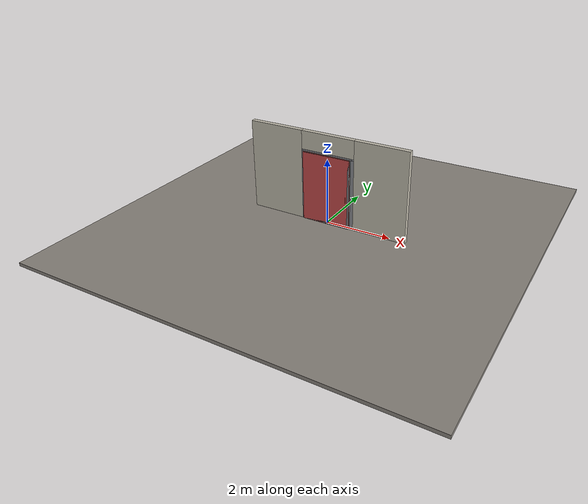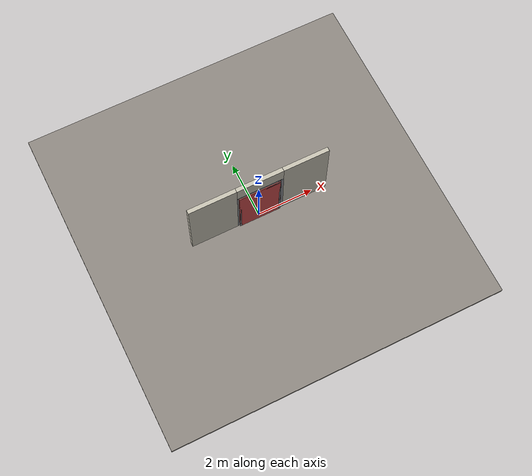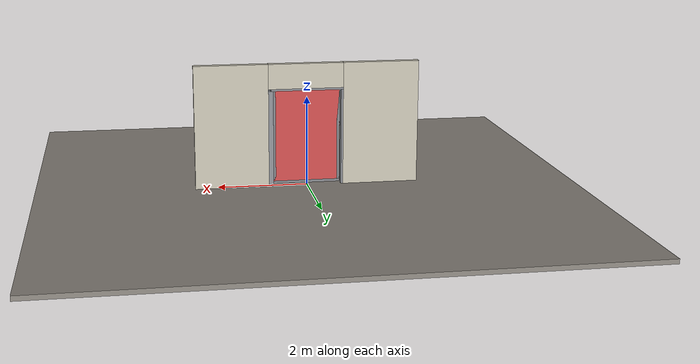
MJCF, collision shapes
<?xml version="1.0" ?>
<mujoco model="db0581_sliding_single_minimal">
  <compiler angle="radian" meshdir="../../hardware" texturedir="../../textures" autolimits="true" inertiafromgeom="false"/>
  <option timestep="0.002" integrator="implicitfast" cone="elliptic" impratio="10" noslip_iterations="3">
    <flag multiccd="enable"/>
  </option>
  <size memory="16M"/>
  <default>
    <geom condim="4" solref="0.005 1" solimp="0.95 0.99 0.001"/>
    <joint solreflimit="0.005 1" solimplimit="0.95 0.99 0.001"/>
    <tendon solreflimit="0.005 1"/>
    <equality solref="0.002 1"/>
  </default>
  <visual>
    <headlight ambient="0.4 0.4 0.4" diffuse="0.7 0.7 0.7" specular="0.2 0.2 0.2"/>
    <quality shadowsize="4096"/>
    <map znear="0.01" zfar="60"/>
  </visual>
  <asset>
    <mesh name="pull_1e5d69a91a" file="pull_1e5d69a91a.obj"/>
    <material name="mat_floor" rgba="0.55 0.53 0.5 1" specular="0.2" shininess="0.15" reflectance="0"/>
    <material name="mat_wall" rgba="0.78 0.76 0.7 1" specular="0.2" shininess="0.1" reflectance="0"/>
    <material name="mat_frame" rgba="0.55 0.56 0.58 1" specular="0.8" shininess="0.55" reflectance="0.4"/>
    <material name="mat_track" rgba="0.8 0.81 0.83 1" specular="0.8" shininess="0.6" reflectance="0.4"/>
    <material name="mat_leaf" rgba="0.5 0.51 0.53 1" specular="0.23" shininess="0.52" reflectance="0.02"/>
    <material name="mat_roller" rgba="0.65 0.66 0.68 1" specular="0.74" shininess="0.5" reflectance="0.36"/>
    <material name="mat_op_stainless" rgba="0.75 0.76 0.77 1" specular="0.8" shininess="0.65" reflectance="0.4"/>
    <material name="mat_hook" rgba="0.75 0.76 0.77 1" specular="0.8" shininess="0.65" reflectance="0.4"/>
    <texture name="skybox" type="skybox" builtin="gradient" rgb1="0.6 0.7 0.85" rgb2="0.9 0.92 0.95" width="256" height="256"/>
  </asset>
  <worldbody>
    <light name="sun" pos="1.5 -2.5 4" dir="-0.3 0.5 -0.8" directional="true" diffuse="0.8 0.8 0.8" specular="0.3 0.3 0.3" castshadow="true"/>
    <light name="fill" pos="-1.5 2.5 3" dir="0.3 -0.5 -0.7" directional="true" diffuse="0.35 0.35 0.4" castshadow="false"/>
    <camera name="robot_view" pos="0 -2.644375 1.817425" xyaxes="1 0 0 0 0.26963 0.962964" fovy="52"/>
    <camera name="far_view" pos="0 2.644375 1.817425" xyaxes="-1 0 0 0 -0.26963 0.962964" fovy="52"/>
    <camera name="iso" pos="2.009725 -2.221275 2.240525" xyaxes="0.741536 0.670913 0 -0.242917 0.268487 0.932151" fovy="46"/>
    <camera name="detail_handle" pos="0.84 -0.9775 1.23" xyaxes="0.97561 0.219512 0 -0.070934 0.315262 0.94635" fovy="38"/>
    <geom name="floor" type="box" size="6 6 0.05" pos="0 0 -0.05" material="mat_floor" group="0" contype="1" conaffinity="1" friction="0.8 0.005 0.0001" density="2400"/>
    <geom name="wall_left" type="box" size="0.8475 0.0725 1.377" pos="-1.6525 0 1.377" material="mat_wall" group="0" contype="1" conaffinity="1" friction="0.6 0.005 0.0001" density="800"/>
    <geom name="wall_right" type="box" size="0.8175 0.0725 1.377" pos="1.6825 0 1.377" material="mat_wall" group="0" contype="1" conaffinity="1" friction="0.6 0.005 0.0001" density="800"/>
    <geom name="wall_header" type="box" size="0.835 0.0725 0.2775" pos="0.03 0 2.4765" material="mat_wall" group="0" contype="1" conaffinity="1" friction="0.6 0.005 0.0001" density="800"/>
    <geom name="jamb_l" type="box" size="0.0225 0.0725 1.077" pos="-0.7825 0 1.077" material="mat_frame" group="0" contype="1" conaffinity="1" friction="0.6 0.005 0.0001" density="300"/>
    <geom name="jamb_head" type="box" size="0.805 0.0725 0.0225" pos="0 0 2.1765" material="mat_frame" group="0" contype="1" conaffinity="1" friction="0.6 0.005 0.0001" density="300"/>
    <geom name="jamb_latch_0" type="box" size="0.0525 0.0725 1.077" pos="0.8125 0 1.077" material="mat_frame" group="0" contype="1" conaffinity="1" friction="0.6 0.005 0.0001" density="300"/>
    <site name="approach_point" pos="0 -1.5 0" quat="1 0 0 0" size="0.05" rgba="0.2 0.9 0.2 0.5" group="4"/>
    <site name="goal_point" pos="0 1.5 0" quat="1 0 0 0" size="0.05" rgba="0.2 0.9 0.2 0.5" group="4"/>
    <site name="door_plane_center" pos="0 0 1.077" quat="1 0 0 0" size="0.02" rgba="0.2 0.9 0.2 0.5" group="4"/>
    <body name="leaf" pos="0 -0.105 0">
      <inertial pos="0.002133 -0.000203 1.078583" mass="139.383325" quat="0.500201 0.500521 0.499445 -0.499834" diaginertia="26.256756103 52.745746027 78.984153636"/>
      <joint name="leaf_slide" type="slide" axis="-1 0 0" limited="true" range="0 1.5" damping="8.969166" frictionloss="27.33767" armature="0.5"/>
      <geom name="leaf_slab_col" type="box" size="0.75 0.0125 1.067" pos="0 0 1.079" material="mat_leaf" group="3" contype="1" conaffinity="1" rgba="0.8 0.3 0.3 0.25" friction="0.45 0.005 0.0001" density="1"/>
      <geom name="leaf_rail_b" type="box" size="0.75 0.0125 0.03" pos="0 0 0.042" material="mat_leaf" group="1" contype="0" conaffinity="0" density="1"/>
      <geom name="leaf_rail_t" type="box" size="0.75 0.0125 0.03" pos="0 0 2.116" material="mat_leaf" group="1" contype="0" conaffinity="0" density="1"/>
      <geom name="leaf_stile_h" type="box" size="0.03 0.0125 1.067" pos="-0.72 0 1.079" material="mat_leaf" group="1" contype="0" conaffinity="0" density="1"/>
      <geom name="leaf_stile_l" type="box" size="0.03 0.0125 1.067" pos="0.72 0 1.079" material="mat_leaf" group="1" contype="0" conaffinity="0" density="1"/>
      <geom name="leaf_pull_n" type="mesh" mesh="pull_1e5d69a91a" pos="0.66 -0.0125 0.95" quat="0.707107 0.707107 0 0" material="mat_op_stainless" group="1" contype="0" conaffinity="0" density="3000"/>
      <geom name="leaf_pull_col_n" type="capsule" size="0.0095 0.08" pos="0.66 -0.0725 0.95" material="mat_op_stainless" group="3" contype="1" conaffinity="1" rgba="0.8 0.3 0.3 0.25" friction="0.7 0.01 0.0001" density="3000"/>
      <site name="leaf_pull_grip_n" pos="0.66 -0.0725 0.95" quat="1 0 0 0" size="0.012" rgba="0.2 0.9 0.2 0.5" group="4"/>
      <site name="leaf_edge_mid" pos="0.75 0 1.079" quat="1 0 0 0" size="0.02" rgba="0.2 0.9 0.2 0.5" group="4"/>
    </body>
  </worldbody>
  <sensor>
    <jointpos name="leaf_slide_pos" joint="leaf_slide"/>
    <jointvel name="leaf_slide_vel" joint="leaf_slide"/>
  </sensor>
</mujoco>
